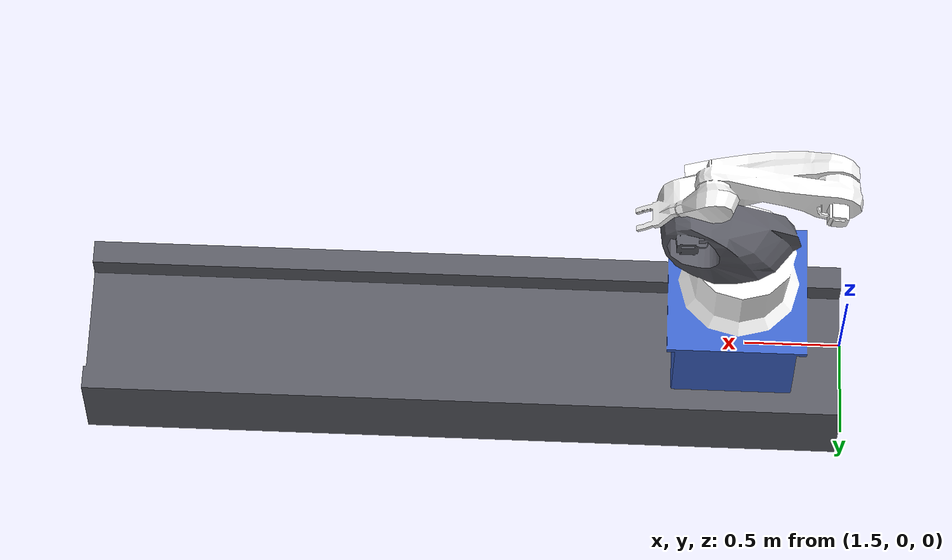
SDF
<?xml version='1.0'?>
<sdf version='1.4'>

  <model name="motoman">
    <static>true</static>
    <link name='base_link'>
      <pose>0 0 0.5 0 0 0</pose>
      <collision name='collision'>
        <geometry>
          <mesh>
            <uri>model://motoman/meshes/motoman.dae</uri>
          </mesh>
        </geometry>
      </collision>
      <visual name='visual'>
        <geometry>
          <mesh>
            <uri>model://motoman/meshes/motoman.dae</uri>
          </mesh>
        </geometry>
      </visual>
    </link>
  </model>
</sdf>
